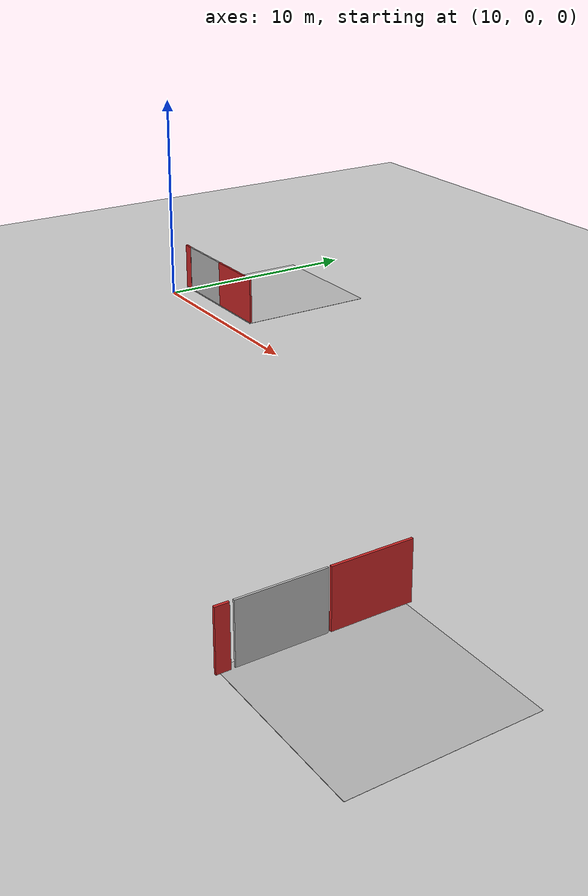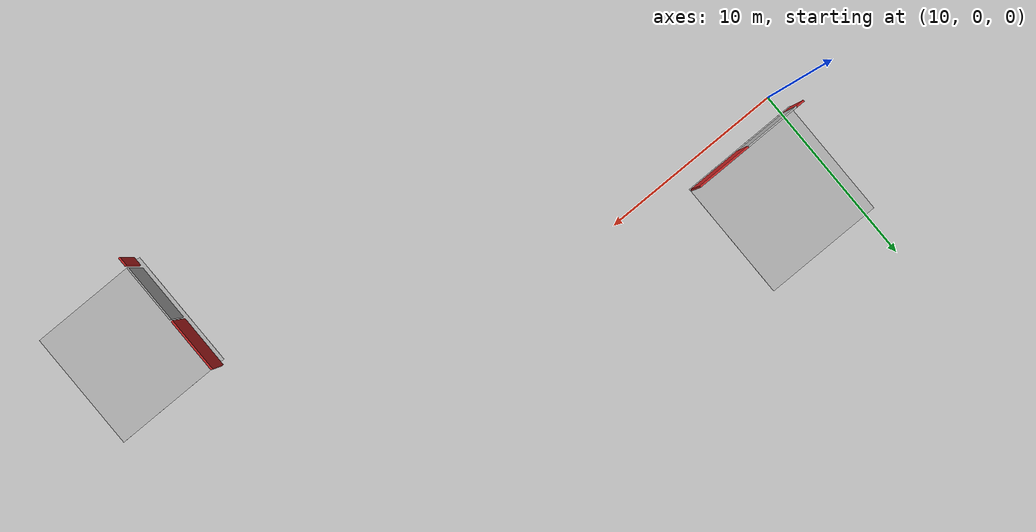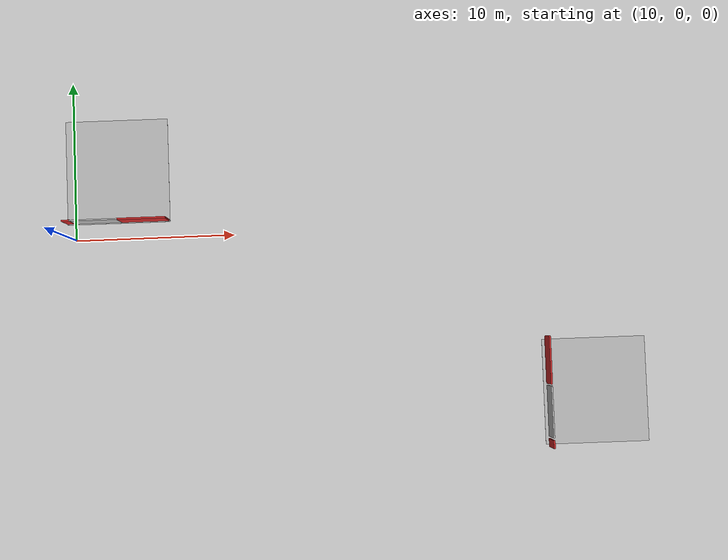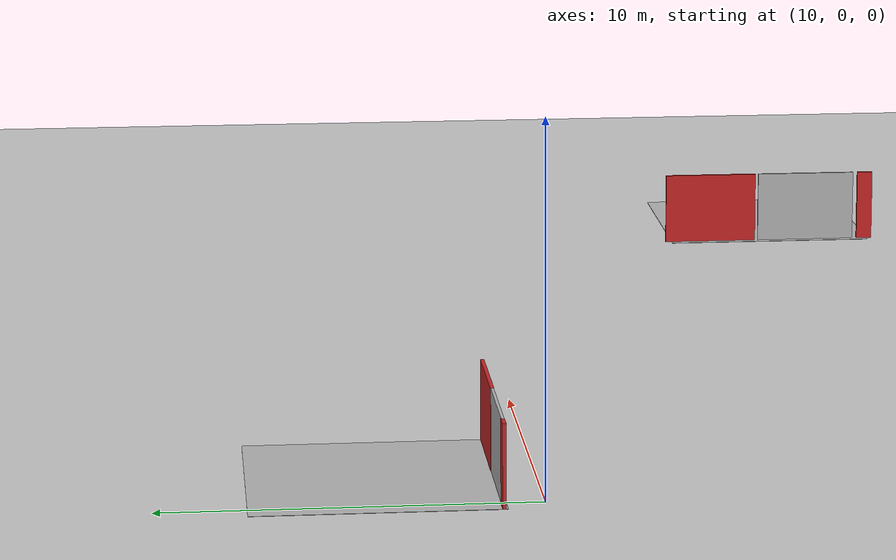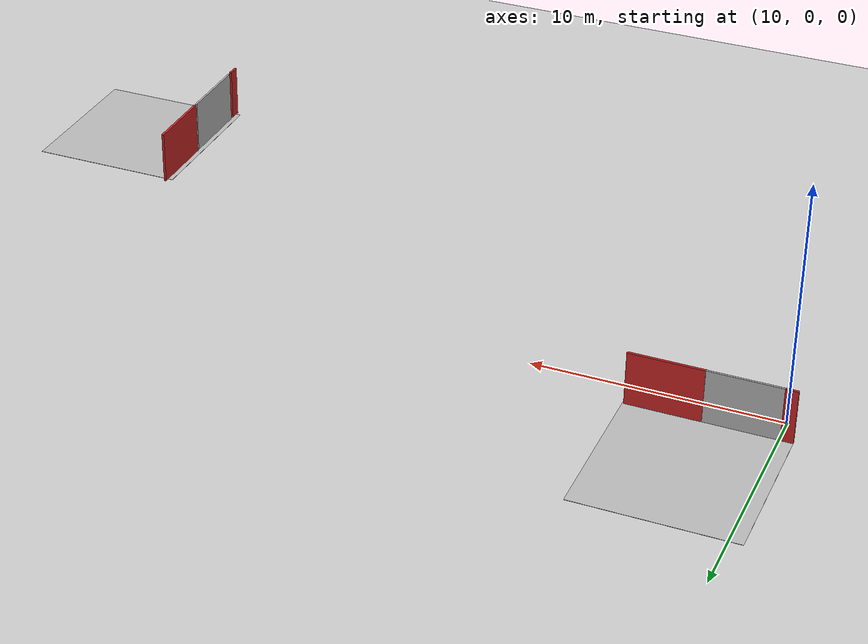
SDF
<sdf version="1.4">
 <world name="default">
  <include><uri>model://ground_plane</uri></include>
  <include><uri>model://sun</uri></include>
  <model name="elevator">
   <pose>12.7 4.3 0.01 0 0 0</pose>
   <link name="link">
    <inertial><mass>800</mass></inertial>
    <collision name="floor_collision"><geometry><box><size>6.5 6.6 0.01</size></box></geometry></collision>
    <visual name="floor_visual"><geometry><box><size>6.5 6.6 0.01</size></box></geometry></visual>
    <collision name="wall1_collision">
     <pose>1.7 -3.2 1.125 0 0 0</pose>
     <geometry><box><size>3 0.1 2.25</size></box></geometry>
    </collision>
    <visual name="wall1_visual">
     <pose>1.7 -3.2 1.125 0 0 0</pose>
     <geometry><box><size>3 0.1 2.25</size></box></geometry>
     <material><script><name>Gazebo/Red</name></script></material>
    </visual>
    <collision name="wall2_collision">
     <pose>-3.0 -3.2 1.125 0 0 0</pose>
     <geometry><box><size>0.5 0.1 2.25</size></box></geometry>
    </collision>
    <visual name="wall2_visual">
     <pose>-3.0 -3.2 1.125 0 0 0</pose>
     <geometry><box><size>0.5 0.1 2.25</size></box></geometry>
     <material><script><name>Gazebo/Red</name></script></material>
    </visual>
   </link>
   <link name="door">
    <pose>-1.3 -3.2 1.125 0 0 0</pose>
    <visual name="visual"><geometry><box><size>3.0 0.08 2.25</size></box></geometry></visual>
   </link>
   <joint name="door_joint" type="prismatic">
    <parent>link</parent>
    <child>door</child>
    <axis>
     <xyz>12 0 0</xyz>
     <limit><lower>0</lower><upper>12</upper><effort>20</effort></limit>
     <dynamics><damping>2</damping></dynamics>
    </axis>
   </joint>
   <joint name="lift" type="prismatic">
    <parent>world</parent>
    <child>link</child>
    <axis>
     <xyz>0 0 1</xyz>
     <limit><lower>0</lower><upper>12</upper><effort>100000</effort></limit>
     <dynamics><damping>50</damping></dynamics>
    </axis>
    <physics><ode><implicit_spring_damper>1</implicit_spring_damper></ode></physics>
   </joint>
   <plugin filename="libgazebo_ros_elevator.so" name="social_elevator_plugin">
    <ros><namespace>social</namespace></ros>
    <lift_joint>elevator::lift</lift_joint>
    <door_joint>elevator::door_joint</door_joint>
    <floor_height>6.20</floor_height>
    <door_wait_time>10</door_wait_time>
   </plugin>
  </model>
  <model name="service_elevator">
   <pose>42.45 -10.6 0.01 0 0 0</pose>
   <link name="link">
    <inertial><mass>800</mass></inertial>
    <collision name="floor_collision"><geometry><box><size>6.5 6.6 0.01</size></box></geometry></collision>
    <visual name="floor_visual"><geometry><box><size>6.5 6.6 0.01</size></box></geometry></visual>
    <collision name="wall1_collision">
     <pose>-3 2 1.125 0 0 1.57</pose>
     <geometry><box><size>3 0.1 2.25</size></box></geometry>
    </collision>
    <visual name="wall1_visual">
     <pose>-3 2 1.125 0 0 1.57</pose>
     <geometry><box><size>3 0.1 2.25</size></box></geometry>
     <material><script><name>Gazebo/Red</name></script></material>
    </visual>
    <collision name="wall2_collision">
     <pose>-3.0 -3.2 1.125 0 0 1.57</pose>
     <geometry><box><size>0.5 0.1 2.25</size></box></geometry>
    </collision>
    <visual name="wall2_visual">
     <pose>-3.0 -3.2 1.125 0 0 1.57</pose>
     <geometry><box><size>0.5 0.1 2.25</size></box></geometry>
     <material><script><name>Gazebo/Red</name></script></material>
    </visual>
   </link>
   <link name="door">
    <pose>-3 -1.2 1.125 0 0 1.57</pose>
    <visual name="visual"><geometry><box><size>3.2 0.08 2.25</size></box></geometry></visual>
   </link>
   <joint name="door_joint" type="prismatic">
    <parent>link</parent>
    <child>door</child>
    <axis>
     <xyz>0 12 0</xyz>
     <limit><lower>0</lower><upper>12</upper><effort>20</effort></limit>
     <dynamics><damping>2</damping></dynamics>
    </axis>
   </joint>
   <joint name="lift" type="prismatic">
    <parent>world</parent>
    <child>link</child>
    <axis>
     <xyz>0 0 1</xyz>
     <limit><lower>0</lower><upper>12</upper><effort>100000</effort></limit>
     <dynamics><damping>50</damping></dynamics>
    </axis>
    <physics><ode><implicit_spring_damper>1</implicit_spring_damper></ode></physics>
   </joint>
   <plugin filename="libgazebo_ros_elevator.so" name="service_elevator_plugin">
    <ros><namespace>service</namespace></ros>
    <lift_joint>service_elevator::lift</lift_joint>
    <door_joint>service_elevator::door_joint</door_joint>
    <floor_height>6.2</floor_height>
    <door_wait_time>10</door_wait_time>
   </plugin>
  </model>
 </world>
</sdf>
